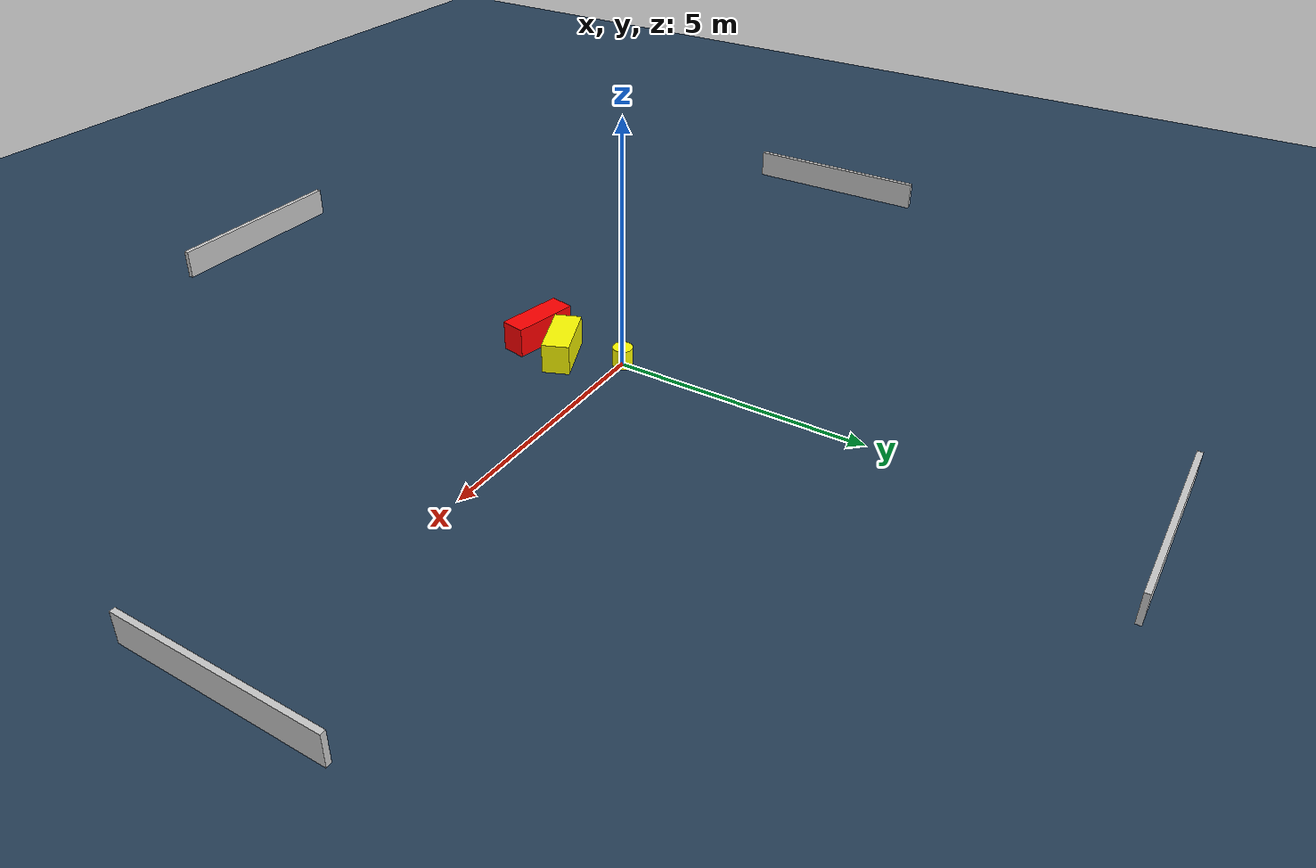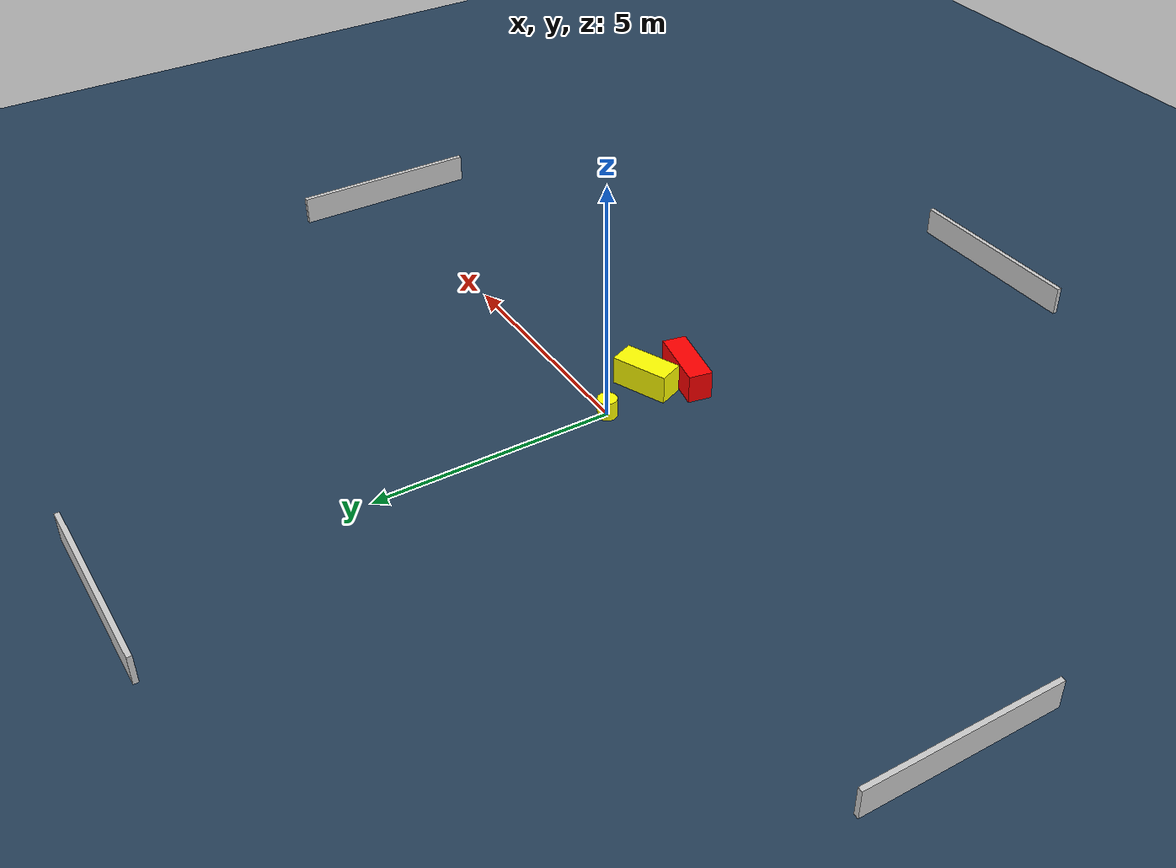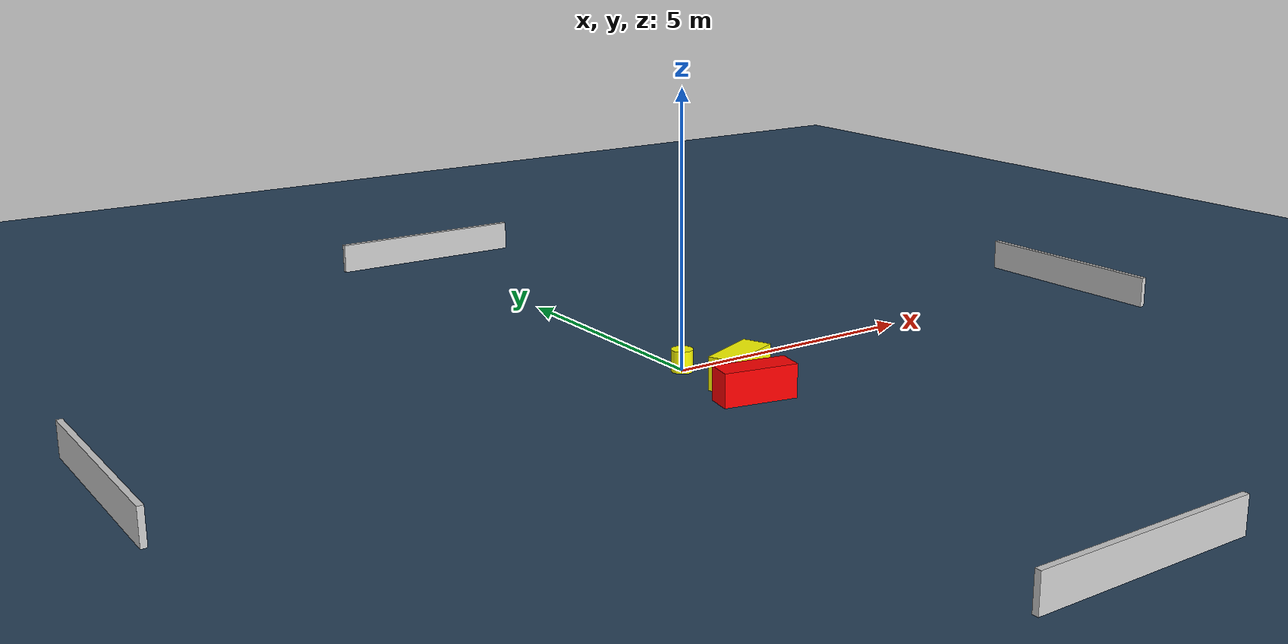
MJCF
<?xml version="1.0" ?>
<mujoco model="generated_environment">
  <option timestep="0.01" integrator="RK4" cone="elliptic"/>
  <default>
    <geom density="1"/>
  </default>
  <asset>
    <texture builtin="gradient" height="3072" name="skybox" rgb1="0.3 0.5 0.7" rgb2="0 0 0" type="skybox" width="512"/>
    <texture builtin="checker" height="300" name="groundplane" rgb1="0.2 0.3 0.4" rgb2="0.1 0.2 0.3" type="2d" width="300"/>
    <material name="groundplane" reflectance="0.2" texrepeat="5 5" texture="groundplane"/>
  </asset>
  <worldbody>
    <light dir="0 0 -1" directional="true" pos="0 0 1.5"/>
    <geom condim="3" friction="0.5 0.005 0.001" material="groundplane" name="floor" pos="0 0 0" size="0 0 0.05" type="plane"/>
    <body name="walls">
      <geom name="wall_1" condim="4" pos="-10.0 0.0 0.3" rgba="0.800000011920929 0.800000011920929 0.800000011920929 1.0" size="0.05 2.0 0.3" type="box"/>
      <geom name="wall_2" condim="4" pos="10.0 0.0 0.3" rgba="0.800000011920929 0.800000011920929 0.800000011920929 1.0" size="0.05 2.0 0.3" type="box"/>
      <geom name="wall_3" condim="4" pos="0.0 -10.0 0.3" rgba="0.800000011920929 0.800000011920929 0.800000011920929 1.0" size="2.0 0.05 0.3" type="box"/>
      <geom name="wall_4" condim="4" pos="0.0 10.0 0.3" rgba="0.800000011920929 0.800000011920929 0.800000011920929 1.0" size="2.0 0.05 0.3" type="box"/>
    </body>
    <body name="robot">
      <joint name="joint_x" type="slide" pos="0 0 0" axis="1 0 0"/>
      <joint name="joint_y" type="slide" pos="0 0 0" axis="0 1 0"/>
      <geom name="robot" type="cylinder" pos="0.0 0.0 0.2" size="0.2 0.2 0.0" mass="5.0" friction="1.0 0.005 0.0001" condim="4" rgba="1.0 1.0 0.0 1.0"/>
    </body>
    <body name="obstacle_1_movable">
      <geom name="obstacle_1_movable" condim="4" pos="0.3935664464245748 -1.1481919900386257 0.3" euler="0 0 202.58198874513835" friction="0.0 0.005 0.001" rgba="1.0 1.0 0.0 1.0" size="0.6031313096692074 0.267764339636449 0.3" type="box" mass="0.1"/>
      <joint type="free"/>
    </body>
    <body name="obstacle_2_static">
      <geom name="obstacle_2_static" condim="4" pos="0.10847118361078026 -1.9307866417882593 0.3" euler="0 0 78.97804740361613" friction="0.0 0.005 0.001" rgba="1.0 0.0 0.0 1.0" size="0.2462523997890796 0.6732622280014926 0.3" type="box"/>
    </body>
  </worldbody>
  <actuator>
    <motor name="actuator_x" joint="joint_x" gear="1" ctrlrange="-1 1"/>
    <motor name="actuator_y" joint="joint_y" gear="1" ctrlrange="-1 1"/>
  </actuator>
</mujoco>
